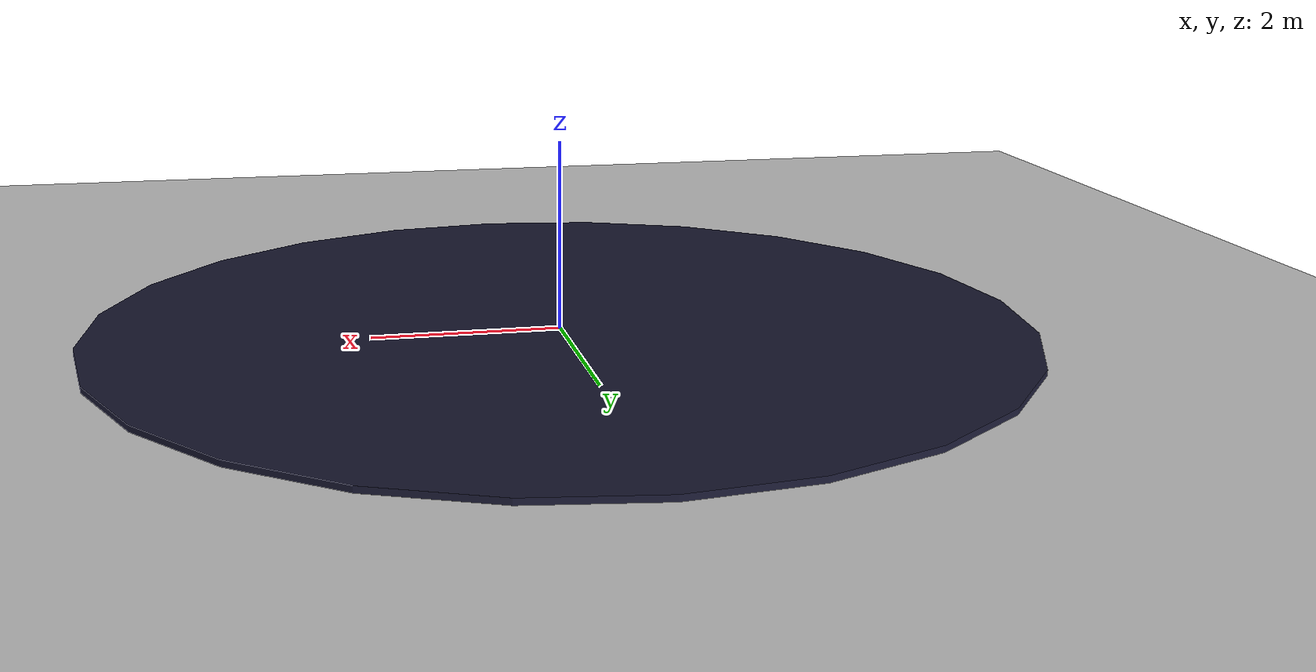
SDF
<sdf version="1.7">
 <world name="default">
  <light name="sun" type="directional">
   <pose>0 0 10 0 -0 0</pose>
   <diffuse>0.8 0.8 0.8 1</diffuse>
   <specular>0.2 0.2 0.2 1</specular>
   <attenuation>
    <range>1000</range>
    <constant>0.9</constant>
    <linear>0.01</linear>
    <quadratic>0.001</quadratic>
   </attenuation>
   <direction>-0.5 0.1 -0.9</direction>
   <spot><inner_angle>0</inner_angle><outer_angle>0</outer_angle><falloff>0</falloff></spot>
  </light>
  <model name="ground_plane">
   <static>1</static>
   <link name="link">
    <collision name="collision">
     <geometry><plane><normal>0 0 1</normal><size>100 100</size></plane></geometry>
     <surface><friction><ode><mu>100</mu><mu2>50</mu2></ode></friction></surface>
    </collision>
    <visual name="visual">
     <cast_shadows>0</cast_shadows>
     <geometry><plane><normal>0 0 1</normal><size>100 100</size></plane></geometry>
     <material>
      <script><uri>file://media/materials/scripts/gazebo.material</uri><name>Gazebo/Grey</name></script>
     </material>
    </visual>
   </link>
  </model>
  <gravity>0 0 -9.8</gravity>
  <magnetic_field>6e-06 2.3e-05 -4.2e-05</magnetic_field>
  <atmosphere type="adiabatic"/>
  <physics type="ode">
   <max_step_size>0.001</max_step_size>
   <real_time_factor>1</real_time_factor>
   <real_time_update_rate>0</real_time_update_rate>
  </physics>
  <scene><ambient>0.4 0.4 0.4 1</ambient><background>0.7 0.7 0.7 1</background><shadows>1</shadows></scene>
  <audio><device>default</device></audio>
  <spherical_coordinates>
   <surface_model>EARTH_WGS84</surface_model>
   <latitude_deg>0</latitude_deg>
   <longitude_deg>0</longitude_deg>
   <elevation>0</elevation>
   <heading_deg>0</heading_deg>
  </spherical_coordinates>
  <model name="Goal">
   <link name="link">
    <inertial>
     <mass>0.00193565</mass>
     <inertia>
      <ixx>0.000120979</ixx>
      <ixy>0</ixy>
      <ixz>0</ixz>
      <iyy>0.000120979</iyy>
      <iyz>0</iyz>
      <izz>0.000241956</izz>
     </inertia>
    </inertial>
    <visual name="visual">
     <geometry><cylinder><radius>5</radius><length>0.1</length></cylinder></geometry>
     <material>
      <ambient>0.1 0.1 0.1 1</ambient>
      <diffuse>0.1 0.1 0.2 1</diffuse>
      <specular>0 0 0 0</specular>
      <emissive>0 0 0 1</emissive>
     </material>
    </visual>
   </link>
   <static>1</static>
   <pose>1.8e-05 -0.014296 0 0 -0 0</pose>
  </model>
 </world>
</sdf>
